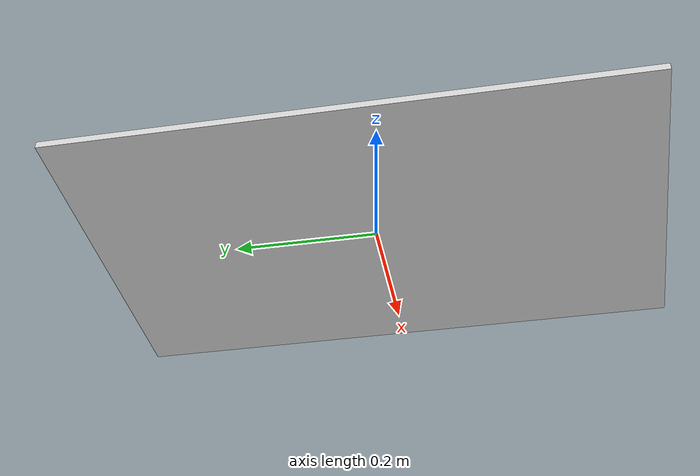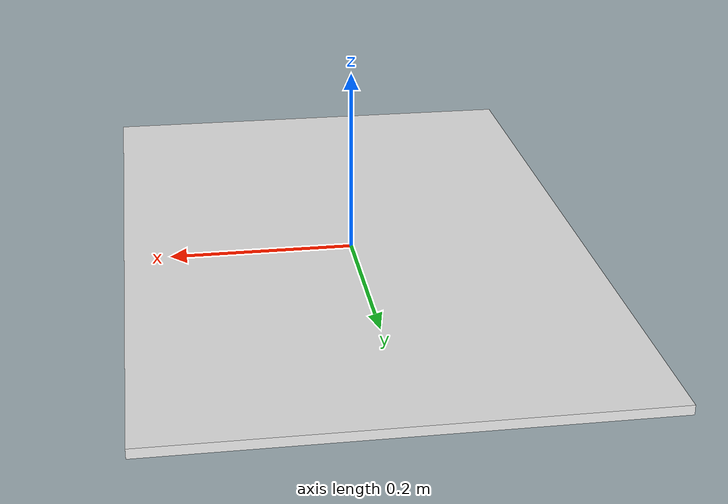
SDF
<?xml version="1.0" ?>
<sdf version="1.6">
  <model name="table_00cm">
    <static>true</static>
    <link name="link">
      <!-- 0cm table: floor-level surface per rulebook sec 3.2.5.
           Represented as a thin 1cm sheet with white surface. -->
      <collision name="collision">
        <pose>0 0 0.005 0 0 0</pose>
        <geometry>
          <box>
            <size>0.5 0.8 0.01</size>
          </box>
        </geometry>
      </collision>
      <visual name="visual">
        <pose>0 0 0.005 0 0 0</pose>
        <geometry>
          <box>
            <size>0.5 0.8 0.01</size>
          </box>
        </geometry>
        <material>
          <ambient>0.95 0.95 0.95 1</ambient>
          <diffuse>0.95 0.95 0.95 1</diffuse>
          <specular>0.1 0.1 0.1 1</specular>
        </material>
      </visual>
    </link>
  </model>
</sdf>
